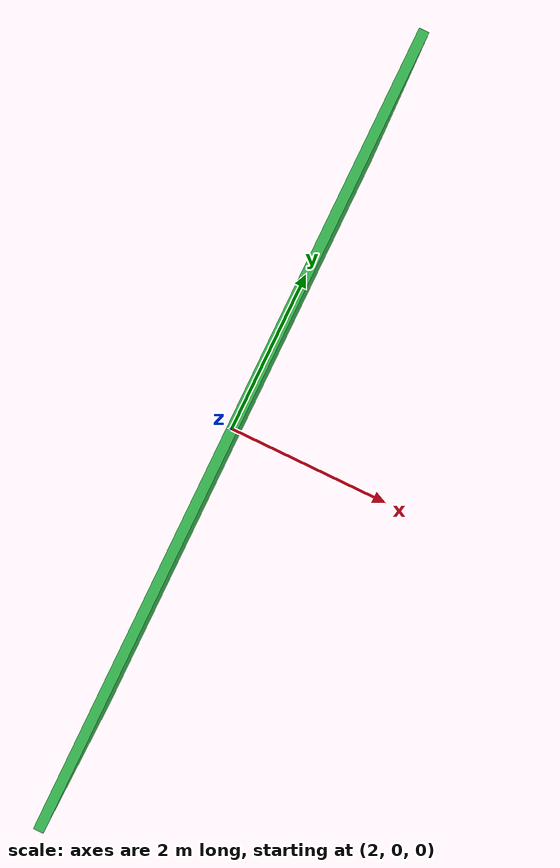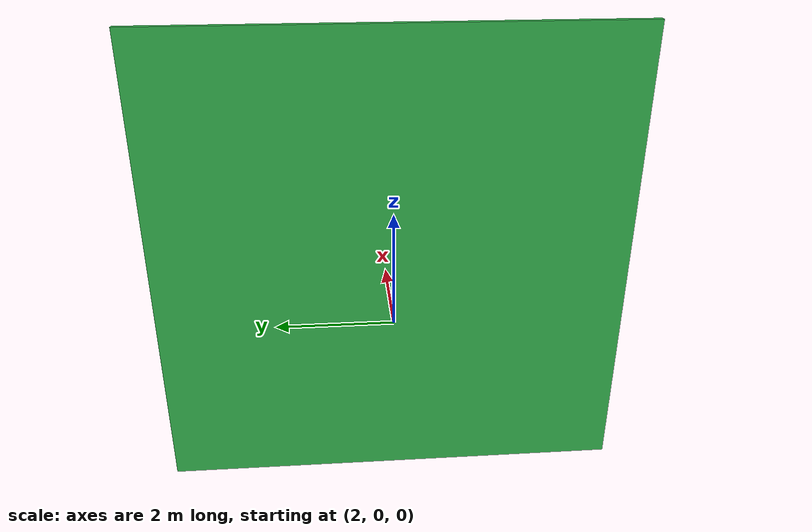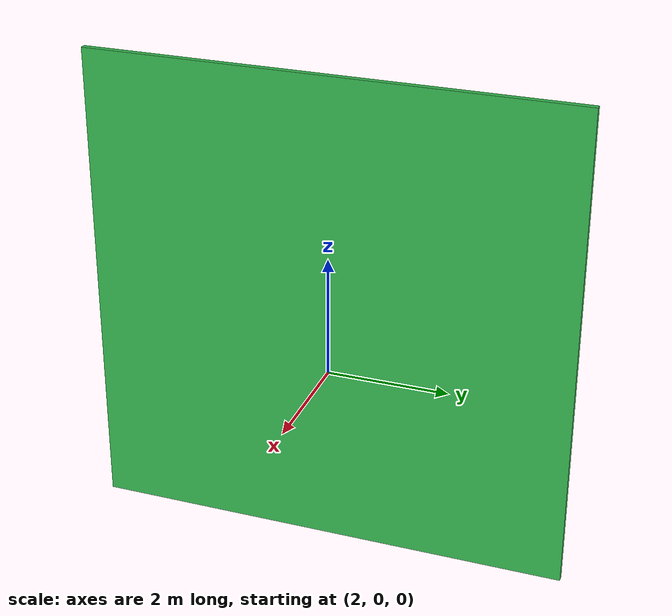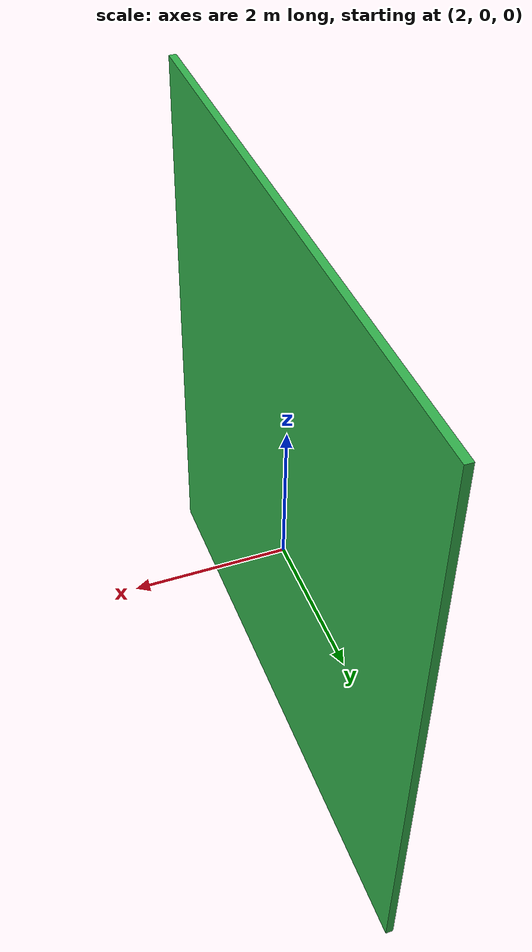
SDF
<?xml version='1.0' encoding='utf-8'?>
<sdf version="1.7">
  <world name="calibration">
    <gravity>0 0 -9.81</gravity>
    <physics name="1ms" type="ignored">
      <max_step_size>0.001</max_step_size>
      <real_time_factor>1</real_time_factor>
    </physics>
    <plugin filename="ignition-gazebo-physics-system" name="ignition::gazebo::systems::Physics" />
    <plugin filename="ignition-gazebo-user-commands-system" name="ignition::gazebo::systems::UserCommands" />
    <plugin filename="ignition-gazebo-scene-broadcaster-system" name="ignition::gazebo::systems::SceneBroadcaster" />
    <plugin filename="ignition-gazebo-sensors-system" name="ignition::gazebo::systems::Sensors">
      <render_engine>ogre2</render_engine>
    </plugin>
    <scene>
      <ambient>0.5 0.5 0.5 1</ambient>
      <background>0.1 0.15 0.2 1</background>
    </scene>
    <light name="sun" type="directional">
      <pose>0 0 10 0 0 0</pose>
      <diffuse>0.8 0.8 0.8 1</diffuse>
      <specular>0.2 0.2 0.2 1</specular>
      <direction>-0.5 0.2 -1</direction>
    </light>
    <model name="calibration_wall">
      <static>true</static>
      <pose>2.05 0 1 0 0 0</pose>
      <link name="wall">
        <visual name="wall">
          <geometry>
            <box>
              <size>0.1 8 8</size>
            </box>
          </geometry>
          <material>
            <ambient>0.2 0.7 0.3 1</ambient>
            <diffuse>0.2 0.7 0.3 1</diffuse>
          </material>
        </visual>
        <collision name="wall">
          <geometry>
            <box>
              <size>0.1 8 8</size>
            </box>
          </geometry>
        </collision>
      </link>
    </model>
  </world>
</sdf>
